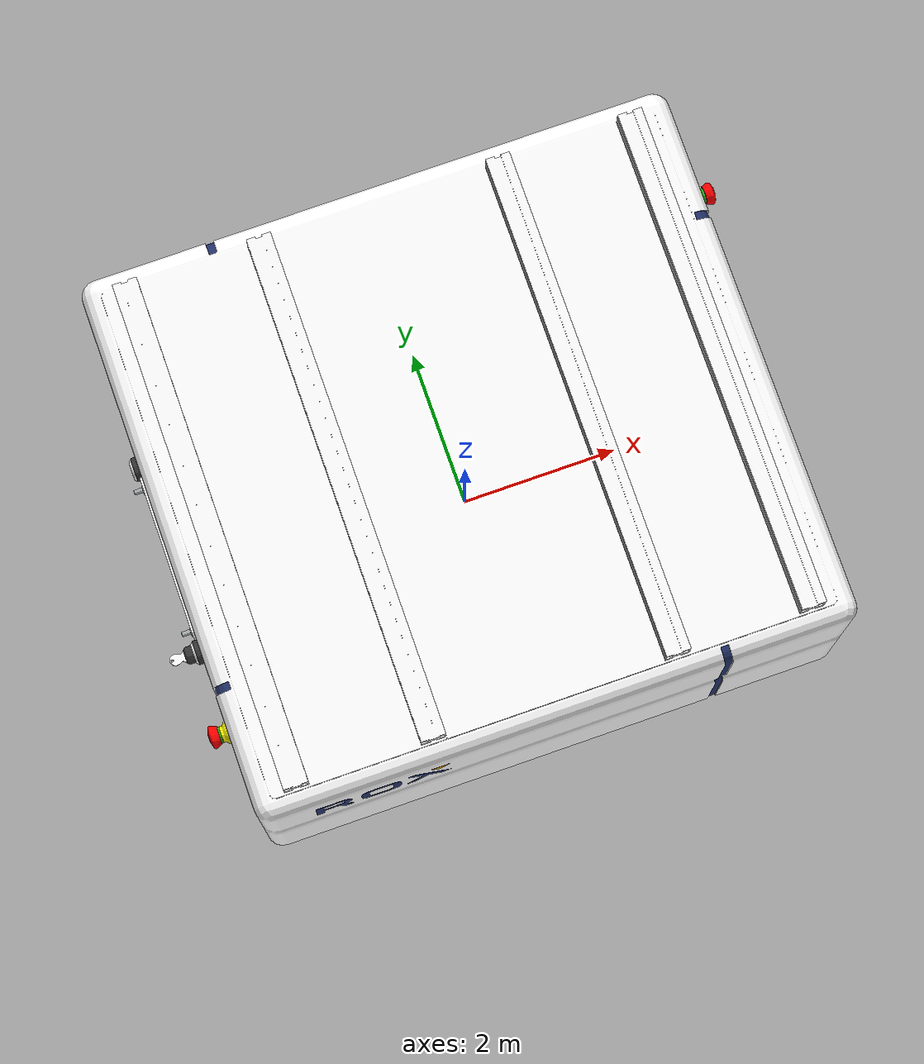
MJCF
<mujoco model="short_frame">
  <default>
    <default class="visual">
      <geom group="2" type="mesh" contype="0" conaffinity="0"/>
    </default>
    <default class="collision">
      <geom group="3" type="mesh"/>
    </default>
  </default>
  <asset>
    <material name="material_short_frame_0" specular="0.20000000000000004" shininess="1.0" rgba="0.13333333 0.18823529 0.40000000 1.0"/>
    <material name="material_short_frame_1" specular="0.20000000000000004" shininess="1.0" rgba="0.96078431 0.60784314 0.00000000 1.0"/>
    <material name="material_short_frame_2" specular="0.20000000000000004" shininess="1.0" rgba="0.96078431 0.96078431 0.96078431 1.0"/>
    <material name="material_short_frame_3" specular="0.20000000000000004" shininess="1.0" rgba="0.96078431 0.61960784 0.00000000 1.0"/>
    <material name="material_short_frame_4" specular="0.20000000000000004" shininess="1.0" rgba="1.00000000 0.00000000 0.00000000 1.0"/>
    <material name="material_short_frame_5" specular="0.20000000000000004" shininess="1.0" rgba="0.94509804 0.91372549 0.01176471 1.0"/>
    <material name="material_short_frame_6" specular="0.20000000000000004" shininess="1.0" rgba="0.14901961 0.65490196 0.05882353 1.0"/>
    <material name="material_short_frame_7" specular="0.20000000000000004" shininess="1.0" rgba="0.65098039 0.67450980 0.68627451 1.0"/>
    <material name="material_short_frame_8" specular="0.20000000000000004" shininess="1.0" rgba="0.95686275 0.95686275 0.95686275 1.0"/>
    <material name="material_short_frame_9" specular="0.20000000000000004" shininess="1.0" rgba="0.20000000 0.20000000 0.20000000 1.0"/>
    <material name="material_short_frame_10" specular="0.20000000000000004" shininess="1.0" rgba="0.41176471 0.41176471 0.41176471 1.0"/>
    <mesh file="short_frame_0.obj"/>
    <mesh file="short_frame_1.obj"/>
    <mesh file="short_frame_2.obj"/>
    <mesh file="short_frame_3.obj"/>
    <mesh file="short_frame_4.obj"/>
    <mesh file="short_frame_5.obj"/>
    <mesh file="short_frame_6.obj"/>
    <mesh file="short_frame_7.obj"/>
    <mesh file="short_frame_8.obj"/>
    <mesh file="short_frame_9.obj"/>
    <mesh file="short_frame_10.obj"/>
  </asset>
  <worldbody>
    <body name="short_frame">
      <geom mesh="short_frame_0" material="material_short_frame_10" class="visual"/>
      <geom mesh="short_frame_1" material="material_short_frame_9" class="visual"/>
      <geom mesh="short_frame_2" material="material_short_frame_8" class="visual"/>
      <geom mesh="short_frame_3" material="material_short_frame_7" class="visual"/>
      <geom mesh="short_frame_4" material="material_short_frame_6" class="visual"/>
      <geom mesh="short_frame_5" material="material_short_frame_5" class="visual"/>
      <geom mesh="short_frame_6" material="material_short_frame_4" class="visual"/>
      <geom mesh="short_frame_7" material="material_short_frame_3" class="visual"/>
      <geom mesh="short_frame_8" material="material_short_frame_2" class="visual"/>
      <geom mesh="short_frame_9" material="material_short_frame_1" class="visual"/>
      <geom mesh="short_frame_10" material="material_short_frame_0" class="visual"/>
      <geom mesh="short_frame_0" class="collision"/>
      <geom mesh="short_frame_1" class="collision"/>
      <geom mesh="short_frame_2" class="collision"/>
      <geom mesh="short_frame_3" class="collision"/>
      <geom mesh="short_frame_4" class="collision"/>
      <geom mesh="short_frame_5" class="collision"/>
      <geom mesh="short_frame_6" class="collision"/>
      <geom mesh="short_frame_7" class="collision"/>
      <geom mesh="short_frame_8" class="collision"/>
      <geom mesh="short_frame_9" class="collision"/>
      <geom mesh="short_frame_10" class="collision"/>
    </body>
  </worldbody>
</mujoco>
